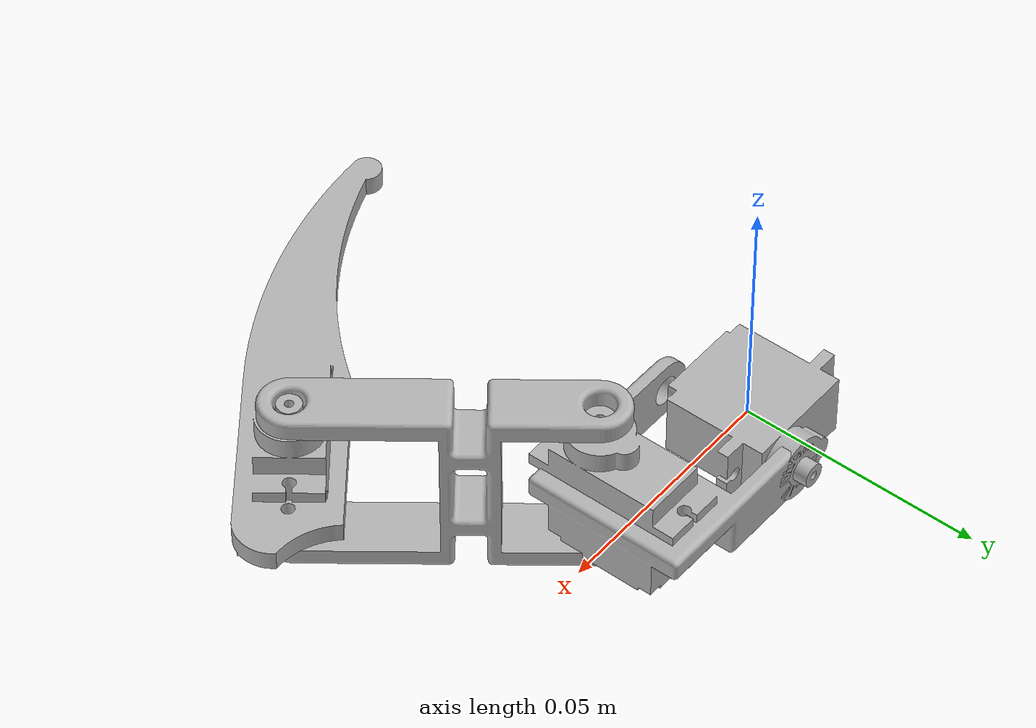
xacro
<?xml version="1.0"?>
<robot name="Coxa" xmlns:xacro="http://www.ros.org/wiki/xacro">

  <!-- Include materials and Gazebo/ros2_control configs -->
  <xacro:include filename="$(find Coxa_description)/urdf/materials.xacro"/>
  <xacro:include filename="$(find Coxa_description)/urdf/Coxa.ros2control"/>
  <xacro:include filename="$(find Coxa_description)/urdf/Coxa.gazebo"/>

  <!-- Base Link -->
  <link name="base_link">
    <inertial>
      <origin xyz="0.00033395797201671865 0.0013978104325039146 0" rpy="0 0 0"/>
      <mass value="0.06279928162174031"/>
      <inertia ixx="4e-06" iyy="4e-06" izz="7e-06" ixy="-0.0" iyz="0.0" ixz="0.0"/>
    </inertial>
    <visual>
      <origin xyz="0 0 0" rpy="0 0 0"/>
      <geometry>
        <mesh filename="file://$(find Coxa_description)/meshes/base_link.stl" scale="0.001 0.001 0.001"/>
      </geometry>
      <material name="silver"/>
    </visual>
    <collision>
      <origin xyz="0 0 0" rpy="0 0 0"/>
      <geometry>
        <mesh filename="file://$(find Coxa_description)/meshes/base_link.stl" scale="0.001 0.001 0.001"/>
      </geometry>
    </collision>
  </link>

  <!-- Limb 1 -->
  <link name="limb1_1">
    <inertial>
      <origin xyz="0.02456704333623103 -0.01900167964714745 0.0018942146734706147" rpy="0 0 0"/>
      <mass value="0.0912840056163354"/>
      <inertia ixx="1.2e-05" iyy="1e-05" izz="1.4e-05" ixy="0.0" iyz="0.0" ixz="-1e-06"/>
    </inertial>
    <visual>
      <origin xyz="-0.00525 -0.01595 0.0" rpy="0 0 0"/>
      <geometry>
        <mesh filename="file://$(find Coxa_description)/meshes/limb1_1.stl" scale="0.001 0.001 0.001"/>
      </geometry>
      <material name="silver"/>
    </visual>
    <collision>
      <origin xyz="-0.00525 -0.01595 0.0" rpy="0 0 0"/>
      <geometry>
        <mesh filename="file://$(find Coxa_description)/meshes/limb1_1.stl" scale="0.001 0.001 0.001"/>
      </geometry>
    </collision>
  </link>

  <!-- Limb 2 -->
  <link name="limb2_1">
    <inertial>
      <origin xyz="0.016267862552212006 -0.020821914547370687 -0.014559695798222479" rpy="0 0 0"/>
      <mass value="0.057466860924570075"/>
      <inertia ixx="2.1e-05" iyy="1.8e-05" izz="1.5e-05" ixy="6e-06" iyz="0.0" ixz="-0.0"/>
    </inertial>
    <visual>
      <origin xyz="-0.03275 0.009 -0.01975" rpy="0 0 0"/>
      <geometry>
        <mesh filename="file://$(find Coxa_description)/meshes/limb2_1.stl" scale="0.001 0.001 0.001"/>
      </geometry>
      <material name="silver"/>
    </visual>
    <collision>
      <origin xyz="-0.03275 0.009 -0.01975" rpy="0 0 0"/>
      <geometry>
        <mesh filename="file://$(find Coxa_description)/meshes/limb2_1.stl" scale="0.001 0.001 0.001"/>
      </geometry>
    </collision>
  </link>

  <!-- Limb 3 -->
  <link name="limb3_1">
    <inertial>
      <origin xyz="-0.010123326959735314 -0.008252080320144017 -0.018718035134085577" rpy="0 0 0"/>
      <mass value="0.1027240463508287"/>
      <inertia ixx="1.9e-05" iyy="3.3e-05" izz="4.4e-05" ixy="-1.8e-05" iyz="-1e-06" ixz="-1e-06"/>
    </inertial>
    <visual>
      <origin xyz="-0.066611 0.052341 -0.02275" rpy="0 0 0"/>
      <geometry>
        <mesh filename="file://$(find Coxa_description)/meshes/limb3_1.stl" scale="0.001 0.001 0.001"/>
      </geometry>
      <material name="silver"/>
    </visual>
    <collision>
      <origin xyz="-0.066611 0.052341 -0.02275" rpy="0 0 0"/>
      <geometry>
        <mesh filename="file://$(find Coxa_description)/meshes/limb3_1.stl" scale="0.001 0.001 0.001"/>
      </geometry>
    </collision>
  </link>

  <!-- Joints -->
  <joint name="limb1_to_base" type="continuous">
    <origin xyz="0.00525 0.01595 0.0" rpy="0 0 0"/>
    <parent link="base_link"/>
    <child link="limb1_1"/>
    <axis xyz="0 1 0"/>
  </joint>

  <joint name="limb2_to_limb1" type="continuous">
    <origin xyz="0.0275 -0.02495 0.01975" rpy="0 0 0"/>
    <parent link="limb1_1"/>
    <child link="limb2_1"/>
    <axis xyz="0 0 1"/>
  </joint>

  <joint name="limb3_to_limb2" type="continuous">
    <origin xyz="0.033861 -0.043341 0.003" rpy="0 0 0"/>
    <parent link="limb2_1"/>
    <child link="limb3_1"/>
    <axis xyz="0 0 1"/>
  </joint>

  <!-- Transmissions -->
  <transmission name="limb1_trans">
    <type>transmission_interface/SimpleTransmission</type>
    <joint name="limb1_to_base">
      <hardwareInterface>PositionJointInterface</hardwareInterface>
    </joint>
    <actuator name="servo1">
      <mechanicalReduction>1</mechanicalReduction>
    </actuator>
  </transmission>

  <transmission name="limb2_trans">
    <type>transmission_interface/SimpleTransmission</type>
    <joint name="limb2_to_limb1">
      <hardwareInterface>PositionJointInterface</hardwareInterface>
    </joint>
    <actuator name="servo2">
      <mechanicalReduction>1</mechanicalReduction>
    </actuator>
  </transmission>

  <transmission name="limb3_trans">
    <type>transmission_interface/SimpleTransmission</type>
    <joint name="limb3_to_limb2">
      <hardwareInterface>PositionJointInterface</hardwareInterface>
    </joint>
    <actuator name="servo3">
      <mechanicalReduction>1</mechanicalReduction>
    </actuator>
  </transmission>

  <!-- Gazebo plugin -->
  <gazebo>
    <plugin filename="libgz_ros2_control-system.so"
            name="gz_ros2_control::GazeboSimROS2ControlPlugin">
      <robotNamespace>/</robotNamespace>
      <parameters>$(find Coxa_description)/config/controls.yaml</parameters>
    </plugin>
  </gazebo>

  <!-- ROS2 Control -->
  <ros2_control name="Coxa_hw" type="system">
    <hardware>
      <plugin>gazebo_ros2_control::DefaultRobotHWSim</plugin>
    </hardware>
    <joint name="limb1_to_base">
      <command_interface name="position"/>
      <state_interface name="position"/>
    </joint>
    <joint name="limb2_to_limb1">
      <command_interface name="position"/>
      <state_interface name="position"/>
    </joint>
    <joint name="limb3_to_limb2">
      <command_interface name="position"/>
      <state_interface name="position"/>
    </joint>
  </ros2_control>

</robot>

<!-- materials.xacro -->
<robot name="Coxa" xmlns:xacro="http://www.ros.org/wiki/xacro" >

<material name="silver">
  <color rgba="0.700 0.700 0.700 1.000"/>
</material>

</robot>

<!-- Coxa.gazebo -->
<robot name="Coxa" xmlns:xacro="http://www.ros.org/wiki/xacro" >

<xacro:property name="body_color" value="Gazebo/Silver" />

<gazebo reference="base_link">
  <material>${body_color}</material>
  <mu1>0.2</mu1>
  <mu2>0.2</mu2>
  <self_collide>true</self_collide>
  <gravity>true</gravity>
</gazebo>

<gazebo reference="limb2_1">
  <material>${body_color}</material>
  <mu1>0.2</mu1>
  <mu2>0.2</mu2>
  <self_collide>true</self_collide>
</gazebo>

<gazebo reference="limb3_1">
  <material>${body_color}</material>
  <mu1>0.2</mu1>
  <mu2>0.2</mu2>
  <self_collide>true</self_collide>
</gazebo>

<gazebo reference="limb1_1">
  <material>${body_color}</material>
  <mu1>0.2</mu1>
  <mu2>0.2</mu2>
  <self_collide>true</self_collide>
</gazebo>

</robot>
